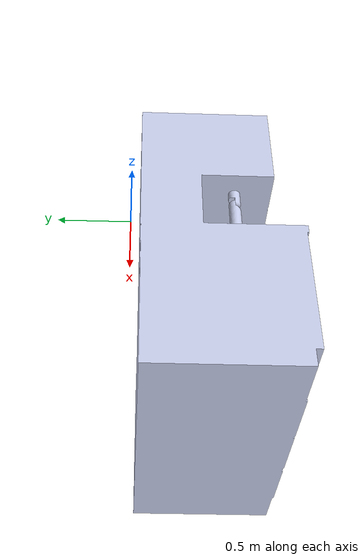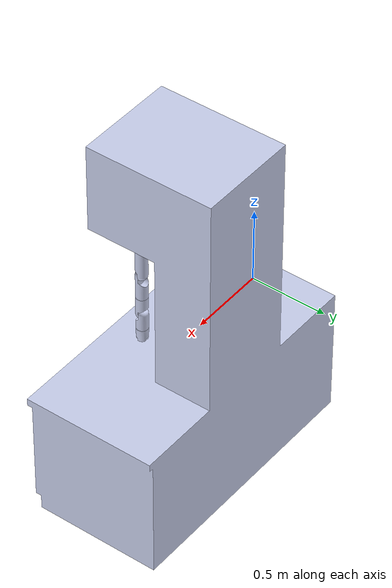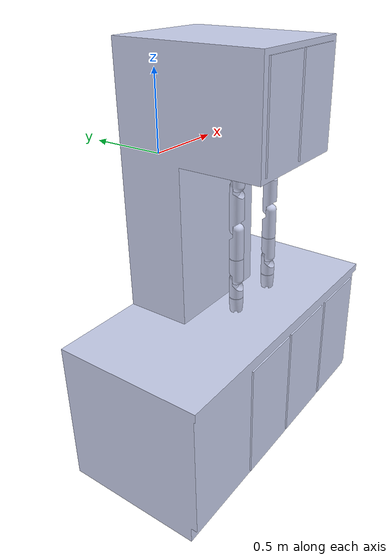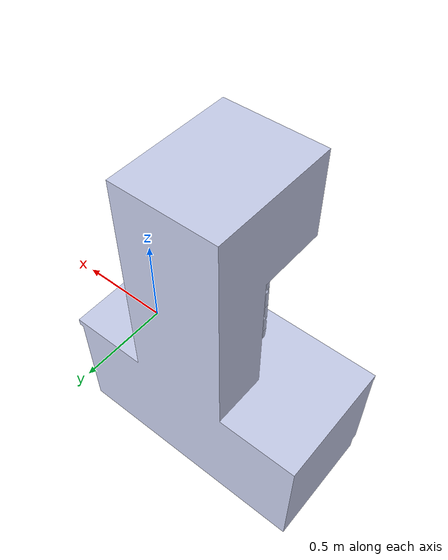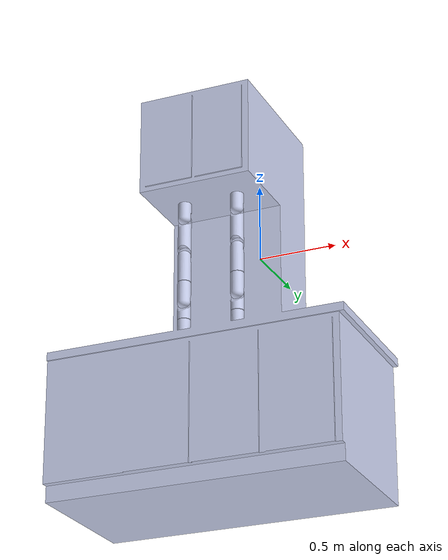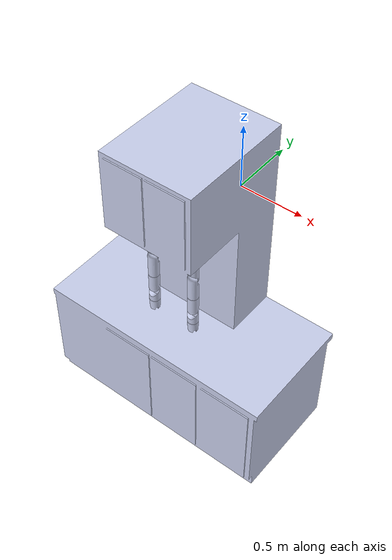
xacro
<?xml version="1.0"?>

<robot  xmlns:xacro="http://www.ros.org/wiki/xacro"

	name="robot_chef_prueba_v6_xacro">

	<!--Reemplazo estructura inertial -->
	<xacro:macro name="inertialm" params="mass xyz rpy ixx ixy ixz iyy iyz izz">
               <inertial>
			<origin
				xyz="${xyz}"
				rpy="${rpy}" />
                       <mass value="${mass}" />
                       <inertia ixx="${ixx}" ixy="${ixy}" ixz="${ixz}"
                                iyy="${iyy}" iyz="${iyz}"
                                izz="${izz}" />
               </inertial>
	</xacro:macro>

	<!--Reemplazo estructura visual -->
	<xacro:macro name="visualm" params="ubi rgba">
		<visual>
			<geometry>
			<mesh filename="package://robot_chef_prueba_v6/meshes/${ubi}" />
			</geometry>
			<origin
				xyz="0 0 0"
				rpy="0 0 0"/>
			<material name="">
				<color rgba="0.792156862745098 0.819607843137255 0.933333333333333 1"/>
			</material>
		</visual>
	</xacro:macro>

	<!--Reemplazo estructura colision -->
	<xacro:macro name="collisionm" params="ubi">
		<collision>
			<origin
			xyz="0 0 0"
			rpy="0 0 0" />
			<geometry>
			<mesh filename="package://robot_chef_prueba_v6/meshes/${ubi}" />
			</geometry>
		</collision>
	</xacro:macro>

	<!-- Reemplazo estructura joint continuo-->
	<xacro:macro name="jointm" params="xyzo rpy linkp linkc xyza">
		<origin
		xyz="${xyzo}"
		rpy="${rpy}" />
		<parent
		link="${linkp}" />
		<child
		link="${linkc}" />
		<axis
		xyz="${xyza}" />
	</xacro:macro>

	<!-- Reemplazo estructura joint revolute-->
	<xacro:macro name="jointr" params="xyzo rpy linkp linkc xyza lower upper effort velocity">
		<origin
		xyz="${xyzo}"
		rpy="${rpy}" />
		<parent
		link="${linkp}" />
		<child
		link="${linkc}" />
		<axis
		xyz="${xyza}" />
		<limit
		lower="${lower}"
		upper="${upper}"
		effort="${effort}"
		velocity="${velocity}" />
	</xacro:macro>

	<!-- Bloque de transmision position -->
	<xacro:macro name="transmission_block" params="jointn">
		<transmission name="tran1">
		  <type>transmission_interface/SimpleTransmission</type>
		  <joint name="${jointn}">
		    <hardwareInterface>PositionJointInterface</hardwareInterface>
		    <mechanicalReduction>1</mechanicalReduction>
		  </joint>
		  <actuator name="motor1">
		    <hardwareInterface>PositionJointInterface</hardwareInterface>
		    <mechanicalReduction>1</mechanicalReduction>
		  </actuator>
		</transmission>
	</xacro:macro>

	<link name="base_Link">

		<xacro:visualm
			ubi="base_link.STL"
			rgba="0.79216 0.81961 0.93333 1"/>
		<xacro:collisionm
			ubi="base_link.STL"/>
		<xacro:inertialm
			mass="2114.6"
			rpy="0 0 0"
			xyz="-0.037242 -0.4829 -0.87131"
			ixx="1214.9"
			ixy="0.31415"
			ixz="-8.4286"
			iyy="1499.6"
			iyz="-33.332"
			izz="570.71"/>
 	</link>

	<link name="iz1_Link">
		<xacro:visualm
			ubi="iz1_Link.STL"
			rgba="0.792156862745098 0.819607843137255 0.933333333333333 1"/>
		<xacro:collisionm
			ubi="iz1_Link.STL"/>
		<xacro:inertialm
			mass="0.450104915206598"
			xyz="0.046899019277028 0.00599386120501055 2.22519419557088E-10"
			rpy="0 0 0"
			ixx="0.000334303263892515"
			ixy="9.96318726703731E-05"
			ixz="-1.67196559200719E-10"
			iyy="0.000690198693942158"
			iyz="3.88296382489624E-10"
			izz="0.000670525862276053"/>
 	</link>

	<link name="iz2_Link">
		<xacro:inertialm
			mass="1.05627303687569"
			xyz="0.123170245762431 2.24128305997828E-07 -0.00580584423243669"
        		rpy="0 0 0"
			ixx="0.000800954354611823"
			ixy="-8.19290612147664E-09"
			ixz="1.82012426586531E-09"
			iyy="0.00563952897742919"
			iyz="-1.10969299836202E-09"
			izz="0.0056911560526873" />
		<xacro:visualm
			ubi="iz2_Link.STL"
			rgba="0.792156862745098 0.819607843137255 0.933333333333333 1"/>
		<xacro:collisionm
			ubi="iz2_Link.STL"/>
 	</link>

	<link name="iz3_Link">
		<xacro:inertialm
			xyz="-0.0820008178809861 -2.51271962209421E-07 -0.00507737401116559"
        		rpy="0 0 0"
			mass="0.725662148891879"
			ixx="0.00057017315857775"
			ixy="6.96000352801363E-09"
			ixz="0.000235262219959166"
			iyy="0.00221358505941085"
			iyz="8.70563297078182E-09"
			izz="0.00224067994548019" />
		<xacro:visualm
			ubi="iz3_Link.STL"
			rgba="0.792156862745098 0.819607843137255 0.933333333333333 1"/>
		<xacro:collisionm
			ubi="iz3_Link.STL"/>
 	</link>

	<link name="iz4_Link">
		<xacro:inertialm
			xyz="-0.0936340655859038 -3.26723792187789E-08 -0.00454395848901257"
        		rpy="0 0 0"
			mass="0.613865486215885"
			ixx="0.000458594108253679"
			ixy="-1.07774988503502E-09"
			ixz="-0.000141736411306983"
			iyy="0.00119500344851908"
			iyz="-2.94085219447195E-09"
			izz="0.00121551589680621" />
		<xacro:visualm
			ubi="iz4_Link.STL"
			rgba="0.792156862745098 0.819607843137255 0.933333333333333 1"/>
		<xacro:collisionm
			ubi="iz4_Link.STL"/>
 	</link>

	<link name="iz5_Link">
		<xacro:inertialm
			xyz="-0.052664238732409 -2.9966948608684E-07 -0.00770287929963565"
        		rpy="0 0 0"
			mass="0.441095544298267"
			ixx="0.000334974664613456"
			ixy="-4.5518055062031E-09"
			ixz="0.00011176763930799"
			iyy="0.000773087753603316"
			iyz="9.9887682840268E-09"
			izz="0.000808220391854739"/>
		<xacro:visualm
			ubi="iz5_Link.STL"
			rgba="0.792156862745098 0.819607843137255 0.933333333333333 1" />
		<xacro:collisionm
			ubi="iz5_Link.STL"/>
 	</link>

	<link name="iz6_Link">
		<xacro:inertialm
			xyz="-0.0703002600247344 4.1717175203182E-07 -2.1094237467878E-15"
        		rpy="0 0 0"
			mass="0.412559191037482"
			ixx="0.000291363474329428"
			ixy="6.20991320193826E-09"
			ixz="-2.01551792960855E-16"
			iyy="0.000379319131169277"
			iyz="-8.62997824244149E-16"
			izz="0.000379318429622878" />
		<xacro:visualm
			ubi="iz6_Link.STL"
			rgba="0.792156862745098 0.819607843137255 0.933333333333333 1"/>
		<xacro:collisionm
			ubi="iz6_Link.STL"/>
 	</link>

	<link name="de1_Link">
		<xacro:inertialm
			xyz="0.046899 0.0059939 2.2252E-10"
			rpy="0 0 0"
			mass="0.450104915206598"
			ixx="0.000334303263892515"
			ixy="9.96318726703731E-05"
			ixz="-1.6719655920103E-10"
			iyy="0.000690198693942158"
			iyz="3.882963824876E-10"
			izz="0.000670525862276052"/>
		<xacro:visualm
			ubi="de1_Link.STL"
			rgba="0.792156862745098 0.819607843137255 0.933333333333333 1"/>
		<xacro:collisionm
			ubi="de1_Link.STL"/>

 	</link>

	<link name="de2_Link">
		<xacro:inertialm
			xyz="0.123170214478795 9.0971106384341E-05 -0.00580582176623101"
        		rpy="0 0 0"
			mass="1.0562732565036"
			ixx="0.000800957406783288"
			ixy="-3.57261281014573E-06"
			ixz="1.92382598231357E-09"
			iyy="0.00563952595673453"
			iyz="-1.07608583509343E-09"
			izz="0.00569115678280626" />
		<xacro:visualm
			ubi="de2_Link.STL"
			rgba="0.792156862745098 0.819607843137255 0.933333333333333 1"/>
		<xacro:collisionm
			ubi="de2_Link.STL"/>
 	</link>

	<link name="de3_Link">
		<xacro:inertialm
			xyz="-0.0820007599456525 0.000182478641151729 -0.00507736778635681"
        		rpy="0 0 0"
			mass="0.725662074286973"
			ixx="0.000570173201368613"
			ixy="6.53209317159868E-09"
			ixz="0.000235262196735889"
			iyy="0.00221358517979188"
			iyz="8.50220677416753E-09"
			izz="0.00224067903647917" />
		<xacro:visualm
			ubi="de3_Link.STL"
			rgba="0.792156862745098 0.819607843137255 0.933333333333333 1"/>
		<xacro:collisionm
			ubi="de3_Link.STL"/>
 	</link>

	<link name="de4_Link">
		<xacro:inertialm
			xyz="-0.0936339918477448 0.000182680104167721 -0.00454394427635862"
        		rpy="0 0 0"
			mass="0.613865661046716"
			ixx="0.000458594275799547"
			ixy="-1.02156716716133E-09"
			ixz="-0.00014173637060252"
			iyy="0.0011950033793905"
			iyz="-2.7894848142881E-09"
			izz="0.00121551627347461" />
		<xacro:visualm
			ubi="de4_Link.STL"
			rgba="0.792156862745098 0.819607843137255 0.933333333333333 1"/>
		<xacro:collisionm
			ubi="de4_Link.STL"/>
 	</link>

	<link name="de5_Link">
		<xacro:inertialm
			xyz="-0.0526641873849999 -0.00018299393018642 -0.00770286576105161"
        		rpy="0 0 0"
			mass="0.441095446672236"
			ixx="0.000334974668607833"
			ixy="-4.54383162948584E-09"
			ixz="0.000111767660106979"
			iyy="0.000773088201308897"
			iyz="9.24505582886993E-09"
			izz="0.000808219573594617" />
		<xacro:visualm
			ubi="de5_Link.STL"
			rgba="0.792156862745098 0.819607843137255 0.933333333333333 1"/>
		<xacro:collisionm
			ubi="de5_Link.STL"/>
 	</link>

	<link name="de6_Link">
		<xacro:inertialm
			xyz="-0.0703001869336869 0.000158655417427489 -9.13588024946677E-05"
        		rpy="0 0 0"
			mass="0.412559191037483"
			ixx="0.000291363474320705"
			ixy="6.20996241571198E-09"
			ixz="8.58326894555804E-14"
			iyy="0.000379319131165864"
			iyz="1.53482370042479E-16"
			izz="0.000379318429617365" />
		<xacro:visualm
			ubi="de6_Link.STL"
			rgba="0.792156862745098 0.819607843137255 0.933333333333333 1"/>
		<xacro:collisionm
			ubi="de6_Link.STL"/>
 	</link>

<!-- JOINTS -->

	<joint name="i1" type="continuous">
		<xacro:jointm
			xyzo="-0.198356243226931 -0.7 0"
			rpy="3.14159265358979 -1.5707963267949 0"
			linkp="base_Link"
			linkc="iz1_Link"
			xyza="1 0 0"/>
	</joint>

	<joint name="i2" type="continuous">
		<xacro:jointm
			xyzo="-0.00357189922674747 0 0"
			rpy="1.5707963267949 0 -3.14159265358979"
			linkp="iz1_Link"
			linkc="iz2_Link"
			xyza="0 0 1"/>
	</joint>

	<joint name="i3" type="continuous">
		<xacro:jointm
			xyzo="0.248000000000001 0 0"
      			rpy="3.14159265358979 0 -3.14159265358979"
			linkp="iz2_Link"
			linkc="iz3_Link"
			xyza="0 0 1"/>
	</joint>

	<joint name="i4" type="continuous">
		<xacro:jointm
			xyzo="-0.135000000000002 0 0"
      			rpy="0.00240768248758283 0 0"
			linkp="iz3_Link"
			linkc="iz4_Link"
			xyza="1 0 0"/>
	</joint>

	<joint name="i5" type="continuous">
		<xacro:jointm
			xyzo="-0.162999999999993 0 0"
      			rpy="3.14159265358979 0 0"
			linkp="iz4_Link"
			linkc="iz5_Link"
			xyza="0 0 1"/>
	</joint>

	<joint name="i6" type="continuous">
		<xacro:jointm
			xyzo="-0.0800000000000022 0 0"
      			rpy="-0.523598775598298 0 0"
			linkp="iz5_Link"
			linkc="iz6_Link"
			xyza="1 0 0"/>
	</joint>

	<joint name="d1" type="continuous">
		<xacro:jointm
			xyzo="0.14164375677307 -0.7 0"
			rpy="3.1347714600349 -1.5707963267949 0"
			linkp="base_Link"
			linkc="de1_Link"
			xyza="1 0 0"/>
	</joint>

	<joint name="d2" type="continuous">
		<xacro:jointm
			xyzo="-0.00357189922674735 0 0"
			rpy="1.57079632679489 0 3.14159265302779"
			linkp="de1_Link"
			linkc="de2_Link"
			xyza="0 0 1"/>
	</joint>

	<joint name="d3" type="continuous">
		<xacro:jointm
			xyzo="0.248 0 0"
      			rpy="3.14159265358979 0 3.14159250263411"
			linkp="de2_Link"
			linkc="de3_Link"
			xyza="0 0 1"/>
	</joint>

	<joint name="d4" type="continuous">
		<xacro:jointm
			xyzo="-0.135000005935467 0 0"
      			rpy="0 0 0"
			linkp="de3_Link"
			linkc="de4_Link"
			xyza="1 0 0"/>
	</joint>

	<joint name="d5" type="continuous">
		<xacro:jointm
			xyzo="-0.162999994064533 0 0"
      			rpy="3.14159265358979 0 0"
			linkp="de4_Link"
			linkc="de5_Link"
			xyza="0 0 1"/>
	</joint>

	<joint name="d6" type="continuous">
		<xacro:jointm
			xyzo="-0.0800000057659613 0 0"
      			rpy="-2.61799387799149 0 0"
			linkp="de5_Link"
			linkc="de6_Link"
			xyza="1 0 0"/>
	</joint>

	<xacro:transmission_block jointn="i1"/>
	<xacro:transmission_block jointn="i2"/>
	<xacro:transmission_block jointn="i3"/>
	<xacro:transmission_block jointn="i4"/>
	<xacro:transmission_block jointn="i5"/>
	<xacro:transmission_block jointn="i6"/>
	<xacro:transmission_block jointn="d1"/>
	<xacro:transmission_block jointn="d2"/>
	<xacro:transmission_block jointn="d3"/>
	<xacro:transmission_block jointn="d4"/>
	<xacro:transmission_block jointn="d5"/>
	<xacro:transmission_block jointn="d6"/>

	<gazebo>
	  <plugin name="gazebo_ros_control" filename="libgazebo_ros_control.so">
		  <robotNamespace>/robot_chef_prueba_v6</robotNamespace>
    	  </plugin>
	</gazebo>

</robot>
